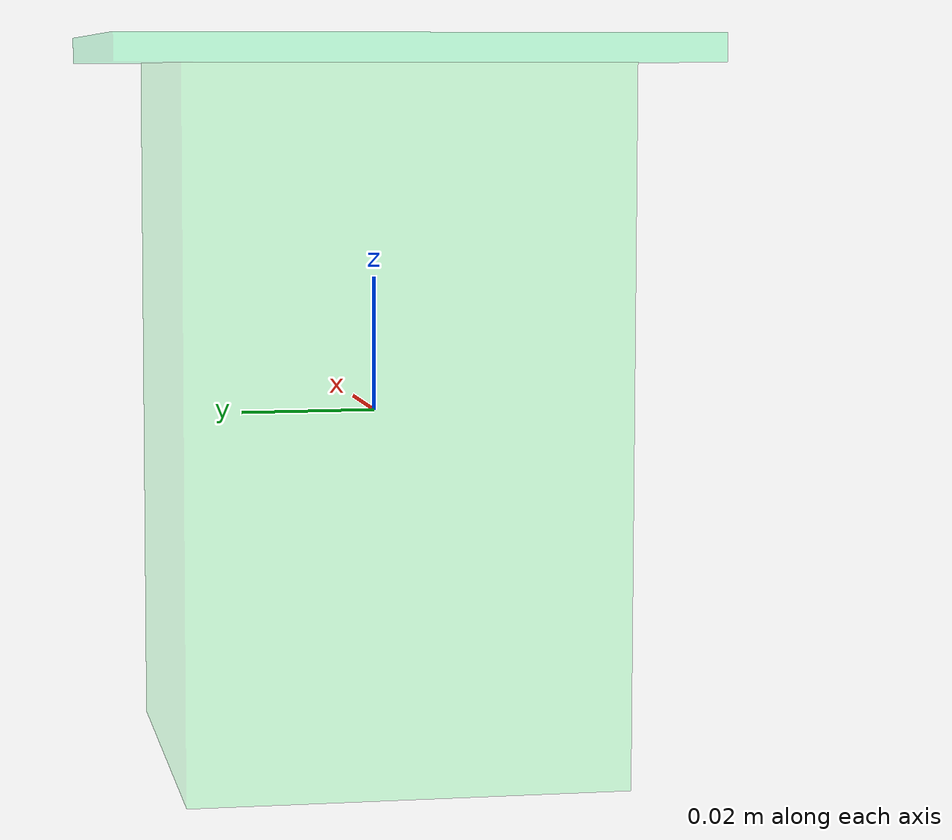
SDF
<?xml version="1.0"?>
<sdf version="1.9">
  <model name="held_payload_collision_proxy">
    <static>true</static>
    <link name="proxy_link">
      <collision name="held_payload_body_collision">
        <geometry><box><size>0.064 0.064 0.104</size></box></geometry>
        <surface>
          <friction><ode><mu>1.2</mu><mu2>1.2</mu2></ode></friction>
          <contact><ode><kp>90000</kp><kd>9</kd></ode></contact>
        </surface>
      </collision>
      <collision name="held_payload_qr_plate_collision">
        <pose>0 0 0.052 0 0 0</pose>
        <geometry><box><size>0.084 0.084 0.006</size></box></geometry>
        <surface>
          <friction><ode><mu>0.9</mu><mu2>0.9</mu2></ode></friction>
          <contact><ode><kp>70000</kp><kd>7</kd></ode></contact>
        </surface>
      </collision>
      <visual name="collision_proxy_body_visual">
        <geometry><box><size>0.064 0.064 0.104</size></box></geometry>
        <material>
          <ambient>0.00 0.95 0.25 0.20</ambient>
          <diffuse>0.00 0.95 0.25 0.20</diffuse>
          <specular>0.60 1.00 0.70 0.35</specular>
        </material>
        <transparency>0.80</transparency>
      </visual>
      <visual name="collision_proxy_qr_plate_visual">
        <pose>0 0 0.054 0 0 0</pose>
        <geometry><box><size>0.084 0.084 0.004</size></box></geometry>
        <material>
          <ambient>0.00 1.00 0.45 0.25</ambient>
          <diffuse>0.00 1.00 0.45 0.25</diffuse>
          <specular>0.60 1.00 0.70 0.35</specular>
        </material>
        <transparency>0.75</transparency>
      </visual>
    </link>
  </model>
</sdf>
